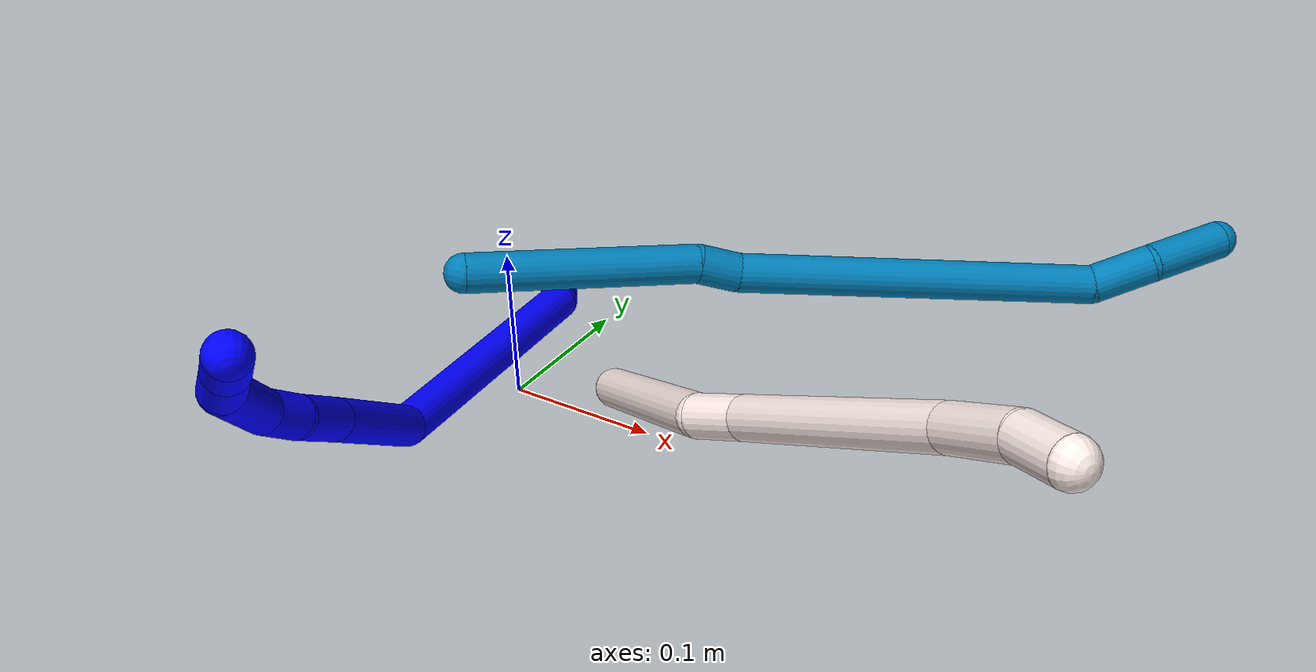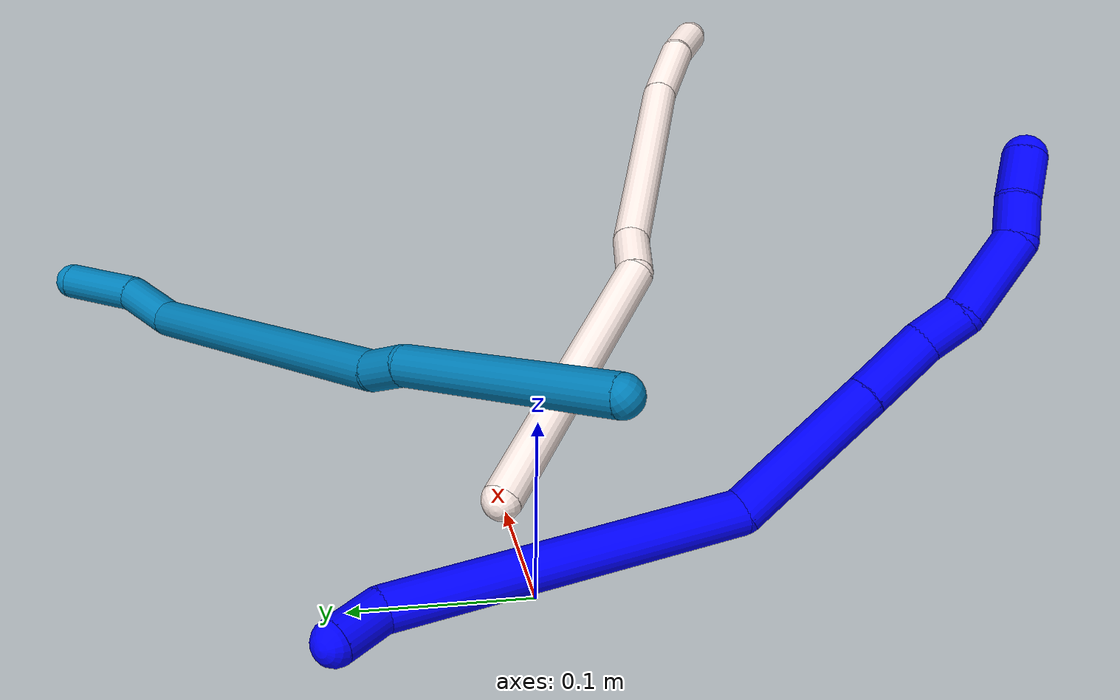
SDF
<sdf version="1.7">
 <world name="default">
  <model name="photoneo_s_sensor">
   <static>1</static>
   <pose>0 0 2 1.57079 1.57079 3.14159</pose>
   <link name="link">
    <inertial><mass>0.1</mass></inertial>
    <sensor name="sensor" type="depth">
     <update_rate>30</update_rate>
     <camera>
      <horizontal_fov>1.22</horizontal_fov>
      <image><width>1920</width><height>1200</height><format>B8G8R8</format></image>
      <clip><near>0.1</near><far>4</far></clip>
      <depth_camera><output>points</output></depth_camera>
     </camera>
     <plugin name="camera_plugin" filename="libgazebo_ros_depth_camera.so">
      <baseline>0.2</baseline>
      <alwaysOn>1</alwaysOn>
      <updateRate>0.0</updateRate>
      <cameraName>camera_ir</cameraName>
      <imageTopicName>/camera/color/image_raw</imageTopicName>
      <cameraInfoTopicName>/camera/color/camera_info</cameraInfoTopicName>
      <depthImageTopicName>/camera/depth/image_raw</depthImageTopicName>
      <depthImageCameraInfoTopicName>/camera/depth/camera_info</depthImageCameraInfoTopicName>
      <pointCloudTopicName>/camera/depth/points</pointCloudTopicName>
      <frameName>fr_optical</frameName>
      <pointCloudCutoff>0.1</pointCloudCutoff>
      <pointCloudCutoffMax>2.0</pointCloudCutoffMax>
      <distortionK1>0</distortionK1>
      <distortionK2>0</distortionK2>
      <distortionK3>0</distortionK3>
      <distortionT1>0</distortionT1>
      <distortionT2>0</distortionT2>
      <CxPrime>0</CxPrime>
      <Cx>0</Cx>
      <Cy>0</Cy>
      <focalLength>0</focalLength>
      <hackBaseline>0</hackBaseline>
     </plugin>
    </sensor>
   </link>
  </model>
  <model name="bin">
   <static>1</static>
   <link name="bottom">
    <collision name="collision-bottom">
     <pose>0 0 -0.01 0 -0 0</pose>
     <geometry><box><size>0.8 0.6 0.02</size></box></geometry>
     <surface>
      <friction><ode><mu>100</mu><mu2>100</mu2></ode></friction>
      <contact><collide_bitmask>65535</collide_bitmask></contact>
     </surface>
    </collision>
   </link>
   <link name="west_wall">
    <collision name="collision-west_wall">
     <pose>-0.41 0 0.1 0 -0 0</pose>
     <geometry><box><size>0.02 0.6 0.2</size></box></geometry>
     <surface>
      <friction><ode><mu>100</mu><mu2>100</mu2></ode></friction>
      <contact><collide_bitmask>65535</collide_bitmask></contact>
     </surface>
    </collision>
   </link>
   <link name="east_wall">
    <collision name="collision-east_wall">
     <pose>0.41 0 0.1 0 -0 0</pose>
     <geometry><box><size>0.02 0.6 0.2</size></box></geometry>
     <surface>
      <friction><ode><mu>100</mu><mu2>100</mu2></ode></friction>
      <contact><collide_bitmask>65535</collide_bitmask></contact>
     </surface>
    </collision>
   </link>
   <link name="south_wall">
    <collision name="collision-south_wall">
     <pose>0 -0.31 0.1 0 -0 0</pose>
     <geometry><box><size>0.8 0.02 0.2</size></box></geometry>
     <surface>
      <friction><ode><mu>100</mu><mu2>100</mu2></ode></friction>
      <contact><collide_bitmask>65535</collide_bitmask></contact>
     </surface>
    </collision>
   </link>
   <link name="north_wall">
    <collision name="collision-north_wall">
     <pose>0 0.31 0.1 0 -0 0</pose>
     <geometry><box><size>0.8 0.02 0.2</size></box></geometry>
     <surface>
      <friction><ode><mu>100</mu><mu2>100</mu2></ode></friction>
      <contact><collide_bitmask>65535</collide_bitmask></contact>
     </surface>
    </collision>
   </link>
  </model>
  <model name="1">
   <static>0</static>
   <link name="1">
    <collision name="collision-cylinder-e_1_1_4">
     <pose>-0.00103 -0.005915 0.013646 0.409021 -0.069138 -0.014345</pose>
     <geometry><cylinder><radius>0.0125</radius><length>0.029816</length></cylinder></geometry>
     <surface>
      <friction><ode><mu>1.16</mu><mu2>1.16</mu2><slip1>0</slip1><slip2>0</slip2></ode></friction>
      <contact><ode><kp>1e+06</kp><kd>1</kd><max_vel>0</max_vel><min_depth>0.001</min_depth></ode></contact>
     </surface>
    </collision>
    <visual name="visual-cylinder-e_1_1_4">
     <pose>-0.00103 -0.005915 0.013646 0.409021 -0.069138 -0.014345</pose>
     <geometry><cylinder><radius>0.0125</radius><length>0.029816</length></cylinder></geometry>
     <material><ambient>0 0 1 1</ambient></material>
    </visual>
    <collision name="collision-cylinder-e_2_4_5">
     <pose>0.022407 -0.079477 0.096136 0.776625 0.248259 0.101995</pose>
     <geometry><cylinder><radius>0.0125</radius><length>0.199143</length></cylinder></geometry>
     <surface>
      <friction><ode><mu>1.16</mu><mu2>1.16</mu2><slip1>0</slip1><slip2>0</slip2></ode></friction>
      <contact><ode><kp>1e+06</kp><kd>1</kd><max_vel>0</max_vel><min_depth>0.001</min_depth></ode></contact>
     </surface>
    </collision>
    <visual name="visual-cylinder-e_2_4_5">
     <pose>0.022407 -0.079477 0.096136 0.776625 0.248259 0.101995</pose>
     <geometry><cylinder><radius>0.0125</radius><length>0.199143</length></cylinder></geometry>
     <material><ambient>0 0 1 1</ambient></material>
    </visual>
    <collision name="collision-cylinder-e_3_5_6">
     <pose>0.036541 -0.185455 0.190308 0.986899 -0.221207 -0.119317</pose>
     <geometry><cylinder><radius>0.0125</radius><length>0.094177</length></cylinder></geometry>
     <surface>
      <friction><ode><mu>1.16</mu><mu2>1.16</mu2><slip1>0</slip1><slip2>0</slip2></ode></friction>
      <contact><ode><kp>1e+06</kp><kd>1</kd><max_vel>0</max_vel><min_depth>0.001</min_depth></ode></contact>
     </surface>
    </collision>
    <visual name="visual-cylinder-e_3_5_6">
     <pose>0.036541 -0.185455 0.190308 0.986899 -0.221207 -0.119317</pose>
     <geometry><cylinder><radius>0.0125</radius><length>0.094177</length></cylinder></geometry>
     <material><ambient>0 0 1 1</ambient></material>
    </visual>
    <collision name="collision-cylinder-e_4_6_7">
     <pose>0.021186 -0.24153 0.228034 0.960908 -0.228023 -0.119219</pose>
     <geometry><cylinder><radius>0.0125</radius><length>0.044447</length></cylinder></geometry>
     <surface>
      <friction><ode><mu>1.16</mu><mu2>1.16</mu2><slip1>0</slip1><slip2>0</slip2></ode></friction>
      <contact><ode><kp>1e+06</kp><kd>1</kd><max_vel>0</max_vel><min_depth>0.001</min_depth></ode></contact>
     </surface>
    </collision>
    <visual name="visual-cylinder-e_4_6_7">
     <pose>0.021186 -0.24153 0.228034 0.960908 -0.228023 -0.119219</pose>
     <geometry><cylinder><radius>0.0125</radius><length>0.044447</length></cylinder></geometry>
     <material><ambient>0 0 1 1</ambient></material>
    </visual>
    <collision name="collision-cylinder-e_5_7_8">
     <pose>0.014735 -0.27144 0.24501 1.21093 -0.109398 -0.075763</pose>
     <geometry><cylinder><radius>0.0125</radius><length>0.026151</length></cylinder></geometry>
     <surface>
      <friction><ode><mu>1.16</mu><mu2>1.16</mu2><slip1>0</slip1><slip2>0</slip2></ode></friction>
      <contact><ode><kp>1e+06</kp><kd>1</kd><max_vel>0</max_vel><min_depth>0.001</min_depth></ode></contact>
     </surface>
    </collision>
    <visual name="visual-cylinder-e_5_7_8">
     <pose>0.014735 -0.27144 0.24501 1.21093 -0.109398 -0.075763</pose>
     <geometry><cylinder><radius>0.0125</radius><length>0.026151</length></cylinder></geometry>
     <material><ambient>0 0 1 1</ambient></material>
    </visual>
    <collision name="collision-cylinder-e_6_8_9">
     <pose>0.002943 -0.303717 0.262427 1.0026 -0.409768 -0.226769</pose>
     <geometry><cylinder><radius>0.0125</radius><length>0.052029</length></cylinder></geometry>
     <surface>
      <friction><ode><mu>1.16</mu><mu2>1.16</mu2><slip1>0</slip1><slip2>0</slip2></ode></friction>
      <contact><ode><kp>1e+06</kp><kd>1</kd><max_vel>0</max_vel><min_depth>0.001</min_depth></ode></contact>
     </surface>
    </collision>
    <visual name="visual-cylinder-e_6_8_9">
     <pose>0.002943 -0.303717 0.262427 1.0026 -0.409768 -0.226769</pose>
     <geometry><cylinder><radius>0.0125</radius><length>0.052029</length></cylinder></geometry>
     <material><ambient>0 0 1 1</ambient></material>
    </visual>
    <collision name="collision-cylinder-e_7_9_10">
     <pose>-0.016745 -0.329215 0.281194 0.737707 -0.861136 -0.351425</pose>
     <geometry><cylinder><radius>0.0125</radius><length>0.024582</length></cylinder></geometry>
     <surface>
      <friction><ode><mu>1.16</mu><mu2>1.16</mu2><slip1>0</slip1><slip2>0</slip2></ode></friction>
      <contact><ode><kp>1e+06</kp><kd>1</kd><max_vel>0</max_vel><min_depth>0.001</min_depth></ode></contact>
     </surface>
    </collision>
    <visual name="visual-cylinder-e_7_9_10">
     <pose>-0.016745 -0.329215 0.281194 0.737707 -0.861136 -0.351425</pose>
     <geometry><cylinder><radius>0.0125</radius><length>0.024582</length></cylinder></geometry>
     <material><ambient>0 0 1 1</ambient></material>
    </visual>
    <collision name="collision-cylinder-e_8_10_2">
     <pose>-0.035857 -0.341398 0.295944 0.656313 -0.720999 -0.255298</pose>
     <geometry><cylinder><radius>0.0125</radius><length>0.029654</length></cylinder></geometry>
     <surface>
      <friction><ode><mu>1.16</mu><mu2>1.16</mu2><slip1>0</slip1><slip2>0</slip2></ode></friction>
      <contact><ode><kp>1e+06</kp><kd>1</kd><max_vel>0</max_vel><min_depth>0.001</min_depth></ode></contact>
     </surface>
    </collision>
    <visual name="visual-cylinder-e_8_10_2">
     <pose>-0.035857 -0.341398 0.295944 0.656313 -0.720999 -0.255298</pose>
     <geometry><cylinder><radius>0.0125</radius><length>0.029654</length></cylinder></geometry>
     <material><ambient>0 0 1 1</ambient></material>
    </visual>
    <collision name="collision-sphere-2">
     <pose>-0.045645 -0.348194 0.304767 0 -0 0</pose>
     <geometry><sphere><radius>0.0125</radius></sphere></geometry>
     <surface>
      <friction><ode><mu>1.16</mu><mu2>1.16</mu2><slip1>0</slip1><slip2>0</slip2></ode></friction>
      <contact><ode><kp>1e+06</kp><kd>1</kd><max_vel>0</max_vel><min_depth>0.001</min_depth></ode></contact>
     </surface>
    </collision>
    <visual name="visual-sphere-2">
     <pose>-0.045645 -0.348194 0.304767 0 -0 0</pose>
     <geometry><sphere><radius>0.0125</radius></sphere></geometry>
     <material><ambient>0 0 1 1</ambient></material>
    </visual>
    <collision name="collision-sphere-10">
     <pose>-0.026069 -0.334602 0.28712 0 -0 0</pose>
     <geometry><sphere><radius>0.0125</radius></sphere></geometry>
     <surface>
      <friction><ode><mu>1.16</mu><mu2>1.16</mu2><slip1>0</slip1><slip2>0</slip2></ode></friction>
      <contact><ode><kp>1e+06</kp><kd>1</kd><max_vel>0</max_vel><min_depth>0.001</min_depth></ode></contact>
     </surface>
    </collision>
    <visual name="visual-sphere-10">
     <pose>-0.026069 -0.334602 0.28712 0 -0 0</pose>
     <geometry><sphere><radius>0.0125</radius></sphere></geometry>
     <material><ambient>0 0 1 1</ambient></material>
    </visual>
    <collision name="collision-sphere-9">
     <pose>-0.007421 -0.323828 0.275267 0 -0 0</pose>
     <geometry><sphere><radius>0.0125</radius></sphere></geometry>
     <surface>
      <friction><ode><mu>1.16</mu><mu2>1.16</mu2><slip1>0</slip1><slip2>0</slip2></ode></friction>
      <contact><ode><kp>1e+06</kp><kd>1</kd><max_vel>0</max_vel><min_depth>0.001</min_depth></ode></contact>
     </surface>
    </collision>
    <visual name="visual-sphere-9">
     <pose>-0.007421 -0.323828 0.275267 0 -0 0</pose>
     <geometry><sphere><radius>0.0125</radius></sphere></geometry>
     <material><ambient>0 0 1 1</ambient></material>
    </visual>
    <collision name="collision-sphere-4">
     <pose>-0.00206 -0.01183 0.027291 0 -0 0</pose>
     <geometry><sphere><radius>0.0125</radius></sphere></geometry>
     <surface>
      <friction><ode><mu>1.16</mu><mu2>1.16</mu2><slip1>0</slip1><slip2>0</slip2></ode></friction>
      <contact><ode><kp>1e+06</kp><kd>1</kd><max_vel>0</max_vel><min_depth>0.001</min_depth></ode></contact>
     </surface>
    </collision>
    <visual name="visual-sphere-4">
     <pose>-0.00206 -0.01183 0.027291 0 -0 0</pose>
     <geometry><sphere><radius>0.0125</radius></sphere></geometry>
     <material><ambient>0 0 1 1</ambient></material>
    </visual>
    <collision name="collision-sphere-1">
     <geometry><sphere><radius>0.0125</radius></sphere></geometry>
     <surface>
      <friction><ode><mu>1.16</mu><mu2>1.16</mu2><slip1>0</slip1><slip2>0</slip2></ode></friction>
      <contact><ode><kp>1e+06</kp><kd>1</kd><max_vel>0</max_vel><min_depth>0.001</min_depth></ode></contact>
     </surface>
    </collision>
    <visual name="visual-sphere-1">
     <geometry><sphere><radius>0.0125</radius></sphere></geometry>
     <material><ambient>0 0 1 1</ambient></material>
    </visual>
    <collision name="collision-sphere-8">
     <pose>0.013307 -0.283605 0.249588 0 -0 0</pose>
     <geometry><sphere><radius>0.0125</radius></sphere></geometry>
     <surface>
      <friction><ode><mu>1.16</mu><mu2>1.16</mu2><slip1>0</slip1><slip2>0</slip2></ode></friction>
      <contact><ode><kp>1e+06</kp><kd>1</kd><max_vel>0</max_vel><min_depth>0.001</min_depth></ode></contact>
     </surface>
    </collision>
    <visual name="visual-sphere-8">
     <pose>0.013307 -0.283605 0.249588 0 -0 0</pose>
     <geometry><sphere><radius>0.0125</radius></sphere></geometry>
     <material><ambient>0 0 1 1</ambient></material>
    </visual>
    <collision name="collision-sphere-5">
     <pose>0.046873 -0.147125 0.164981 0 -0 0</pose>
     <geometry><sphere><radius>0.0125</radius></sphere></geometry>
     <surface>
      <friction><ode><mu>1.16</mu><mu2>1.16</mu2><slip1>0</slip1><slip2>0</slip2></ode></friction>
      <contact><ode><kp>1e+06</kp><kd>1</kd><max_vel>0</max_vel><min_depth>0.001</min_depth></ode></contact>
     </surface>
    </collision>
    <visual name="visual-sphere-5">
     <pose>0.046873 -0.147125 0.164981 0 -0 0</pose>
     <geometry><sphere><radius>0.0125</radius></sphere></geometry>
     <material><ambient>0 0 1 1</ambient></material>
    </visual>
    <collision name="collision-sphere-6">
     <pose>0.02621 -0.223785 0.215634 0 -0 0</pose>
     <geometry><sphere><radius>0.0125</radius></sphere></geometry>
     <surface>
      <friction><ode><mu>1.16</mu><mu2>1.16</mu2><slip1>0</slip1><slip2>0</slip2></ode></friction>
      <contact><ode><kp>1e+06</kp><kd>1</kd><max_vel>0</max_vel><min_depth>0.001</min_depth></ode></contact>
     </surface>
    </collision>
    <visual name="visual-sphere-6">
     <pose>0.02621 -0.223785 0.215634 0 -0 0</pose>
     <geometry><sphere><radius>0.0125</radius></sphere></geometry>
     <material><ambient>0 0 1 1</ambient></material>
    </visual>
    <collision name="collision-sphere-7">
     <pose>0.016162 -0.259275 0.240433 0 -0 0</pose>
     <geometry><sphere><radius>0.0125</radius></sphere></geometry>
     <surface>
      <friction><ode><mu>1.16</mu><mu2>1.16</mu2><slip1>0</slip1><slip2>0</slip2></ode></friction>
      <contact><ode><kp>1e+06</kp><kd>1</kd><max_vel>0</max_vel><min_depth>0.001</min_depth></ode></contact>
     </surface>
    </collision>
    <visual name="visual-sphere-7">
     <pose>0.016162 -0.259275 0.240433 0 -0 0</pose>
     <geometry><sphere><radius>0.0125</radius></sphere></geometry>
     <material><ambient>0 0 1 1</ambient></material>
    </visual>
    <inertial>
     <pose>0.015756 -0.170644 0.166719 0 -0 0</pose>
     <mass>0.5</mass>
     <inertia>
      <ixx>0.000792</ixx>
      <ixy>0</ixy>
      <ixz>0</ixz>
      <iyy>0.000573</iyy>
      <iyz>0</iyz>
      <izz>0.000424</izz>
     </inertia>
    </inertial>
   </link>
   <pose>-0.044529 0.106787 0.011292 -1.79822 0.906932 -2.3969</pose>
  </model>
  <model name="9">
   <static>0</static>
   <link name="9">
    <collision name="collision-cylinder-e_1_1_4">
     <pose>0.053324 0.043883 0.02341 -1.08073 0.820193 -0.510262</pose>
     <geometry><cylinder><radius>0.0125</radius><length>0.145839</length></cylinder></geometry>
     <surface>
      <friction><ode><mu>1.16</mu><mu2>1.16</mu2><slip1>0</slip1><slip2>0</slip2></ode></friction>
      <contact><ode><kp>1e+06</kp><kd>1</kd><max_vel>0</max_vel><min_depth>0.001</min_depth></ode></contact>
     </surface>
    </collision>
    <visual name="visual-cylinder-e_1_1_4">
     <pose>0.053324 0.043883 0.02341 -1.08073 0.820193 -0.510262</pose>
     <geometry><cylinder><radius>0.0125</radius><length>0.145839</length></cylinder></geometry>
     <material><ambient>0 0.490196 0.709804 1</ambient></material>
    </visual>
    <collision name="collision-cylinder-e_2_4_5">
     <pose>0.116492 0.097134 0.047857 -1.46064 0.807075 -0.730394</pose>
     <geometry><cylinder><radius>0.0125</radius><length>0.027257</length></cylinder></geometry>
     <surface>
      <friction><ode><mu>1.16</mu><mu2>1.16</mu2><slip1>0</slip1><slip2>0</slip2></ode></friction>
      <contact><ode><kp>1e+06</kp><kd>1</kd><max_vel>0</max_vel><min_depth>0.001</min_depth></ode></contact>
     </surface>
    </collision>
    <visual name="visual-cylinder-e_2_4_5">
     <pose>0.116492 0.097134 0.047857 -1.46064 0.807075 -0.730394</pose>
     <geometry><cylinder><radius>0.0125</radius><length>0.027257</length></cylinder></geometry>
     <material><ambient>0 0.490196 0.709804 1</ambient></material>
    </visual>
    <collision name="collision-cylinder-e_3_5_6">
     <pose>0.222755 0.163613 0.077094 -1.11212 0.987015 -0.645227</pose>
     <geometry><cylinder><radius>0.0125</radius><length>0.231114</length></cylinder></geometry>
     <surface>
      <friction><ode><mu>1.16</mu><mu2>1.16</mu2><slip1>0</slip1><slip2>0</slip2></ode></friction>
      <contact><ode><kp>1e+06</kp><kd>1</kd><max_vel>0</max_vel><min_depth>0.001</min_depth></ode></contact>
     </surface>
    </collision>
    <visual name="visual-cylinder-e_3_5_6">
     <pose>0.222755 0.163613 0.077094 -1.11212 0.987015 -0.645227</pose>
     <geometry><cylinder><radius>0.0125</radius><length>0.231114</length></cylinder></geometry>
     <material><ambient>0 0.490196 0.709804 1</ambient></material>
    </visual>
    <collision name="collision-cylinder-e_4_6_7">
     <pose>0.334655 0.227653 0.117186 -0.527725 0.844109 -0.241447</pose>
     <geometry><cylinder><radius>0.0125</radius><length>0.04143</length></cylinder></geometry>
     <surface>
      <friction><ode><mu>1.16</mu><mu2>1.16</mu2><slip1>0</slip1><slip2>0</slip2></ode></friction>
      <contact><ode><kp>1e+06</kp><kd>1</kd><max_vel>0</max_vel><min_depth>0.001</min_depth></ode></contact>
     </surface>
    </collision>
    <visual name="visual-cylinder-e_4_6_7">
     <pose>0.334655 0.227653 0.117186 -0.527725 0.844109 -0.241447</pose>
     <geometry><cylinder><radius>0.0125</radius><length>0.04143</length></cylinder></geometry>
     <material><ambient>0 0.490196 0.709804 1</ambient></material>
    </visual>
    <collision name="collision-cylinder-e_5_7_2">
     <pose>0.365613 0.25133 0.143868 -0.847312 0.605762 -0.280005</pose>
     <geometry><cylinder><radius>0.0125</radius><length>0.05436</length></cylinder></geometry>
     <surface>
      <friction><ode><mu>1.16</mu><mu2>1.16</mu2><slip1>0</slip1><slip2>0</slip2></ode></friction>
      <contact><ode><kp>1e+06</kp><kd>1</kd><max_vel>0</max_vel><min_depth>0.001</min_depth></ode></contact>
     </surface>
    </collision>
    <visual name="visual-cylinder-e_5_7_2">
     <pose>0.365613 0.25133 0.143868 -0.847312 0.605762 -0.280005</pose>
     <geometry><cylinder><radius>0.0125</radius><length>0.05436</length></cylinder></geometry>
     <material><ambient>0 0.490196 0.709804 1</ambient></material>
    </visual>
    <collision name="collision-sphere-2">
     <pose>0.381089 0.268077 0.15866 0 -0 0</pose>
     <geometry><sphere><radius>0.0125</radius></sphere></geometry>
     <surface>
      <friction><ode><mu>1.16</mu><mu2>1.16</mu2><slip1>0</slip1><slip2>0</slip2></ode></friction>
      <contact><ode><kp>1e+06</kp><kd>1</kd><max_vel>0</max_vel><min_depth>0.001</min_depth></ode></contact>
     </surface>
    </collision>
    <visual name="visual-sphere-2">
     <pose>0.381089 0.268077 0.15866 0 -0 0</pose>
     <geometry><sphere><radius>0.0125</radius></sphere></geometry>
     <material><ambient>0 0.490196 0.709804 1</ambient></material>
    </visual>
    <collision name="collision-sphere-7">
     <pose>0.350137 0.234583 0.129076 0 -0 0</pose>
     <geometry><sphere><radius>0.0125</radius></sphere></geometry>
     <surface>
      <friction><ode><mu>1.16</mu><mu2>1.16</mu2><slip1>0</slip1><slip2>0</slip2></ode></friction>
      <contact><ode><kp>1e+06</kp><kd>1</kd><max_vel>0</max_vel><min_depth>0.001</min_depth></ode></contact>
     </surface>
    </collision>
    <visual name="visual-sphere-7">
     <pose>0.350137 0.234583 0.129076 0 -0 0</pose>
     <geometry><sphere><radius>0.0125</radius></sphere></geometry>
     <material><ambient>0 0.490196 0.709804 1</ambient></material>
    </visual>
    <collision name="collision-sphere-6">
     <pose>0.319173 0.220722 0.105295 0 -0 0</pose>
     <geometry><sphere><radius>0.0125</radius></sphere></geometry>
     <surface>
      <friction><ode><mu>1.16</mu><mu2>1.16</mu2><slip1>0</slip1><slip2>0</slip2></ode></friction>
      <contact><ode><kp>1e+06</kp><kd>1</kd><max_vel>0</max_vel><min_depth>0.001</min_depth></ode></contact>
     </surface>
    </collision>
    <visual name="visual-sphere-6">
     <pose>0.319173 0.220722 0.105295 0 -0 0</pose>
     <geometry><sphere><radius>0.0125</radius></sphere></geometry>
     <material><ambient>0 0.490196 0.709804 1</ambient></material>
    </visual>
    <collision name="collision-sphere-5">
     <pose>0.126336 0.106503 0.048893 0 -0 0</pose>
     <geometry><sphere><radius>0.0125</radius></sphere></geometry>
     <surface>
      <friction><ode><mu>1.16</mu><mu2>1.16</mu2><slip1>0</slip1><slip2>0</slip2></ode></friction>
      <contact><ode><kp>1e+06</kp><kd>1</kd><max_vel>0</max_vel><min_depth>0.001</min_depth></ode></contact>
     </surface>
    </collision>
    <visual name="visual-sphere-5">
     <pose>0.126336 0.106503 0.048893 0 -0 0</pose>
     <geometry><sphere><radius>0.0125</radius></sphere></geometry>
     <material><ambient>0 0.490196 0.709804 1</ambient></material>
    </visual>
    <collision name="collision-sphere-1">
     <geometry><sphere><radius>0.0125</radius></sphere></geometry>
     <surface>
      <friction><ode><mu>1.16</mu><mu2>1.16</mu2><slip1>0</slip1><slip2>0</slip2></ode></friction>
      <contact><ode><kp>1e+06</kp><kd>1</kd><max_vel>0</max_vel><min_depth>0.001</min_depth></ode></contact>
     </surface>
    </collision>
    <visual name="visual-sphere-1">
     <geometry><sphere><radius>0.0125</radius></sphere></geometry>
     <material><ambient>0 0.490196 0.709804 1</ambient></material>
    </visual>
    <collision name="collision-sphere-4">
     <pose>0.106649 0.087766 0.046821 0 -0 0</pose>
     <geometry><sphere><radius>0.0125</radius></sphere></geometry>
     <surface>
      <friction><ode><mu>1.16</mu><mu2>1.16</mu2><slip1>0</slip1><slip2>0</slip2></ode></friction>
      <contact><ode><kp>1e+06</kp><kd>1</kd><max_vel>0</max_vel><min_depth>0.001</min_depth></ode></contact>
     </surface>
    </collision>
    <visual name="visual-sphere-4">
     <pose>0.106649 0.087766 0.046821 0 -0 0</pose>
     <geometry><sphere><radius>0.0125</radius></sphere></geometry>
     <material><ambient>0 0.490196 0.709804 1</ambient></material>
    </visual>
    <inertial>
     <pose>0.192346 0.139909 0.070424 0 -0 0</pose>
     <mass>0.5</mass>
     <inertia>
      <ixx>0.000225</ixx>
      <ixy>0</ixy>
      <ixz>0</ixz>
      <iyy>0.000629</iyy>
      <iyz>0</iyz>
      <izz>-0.001749</izz>
     </inertia>
    </inertial>
   </link>
   <pose>0.00231 -0.04433 0.111063 -0.670604 -0.023623 0.051606</pose>
  </model>
  <model name="11">
   <static>0</static>
   <link name="11">
    <collision name="collision-cylinder-e_1_1_4">
     <pose>0.037414 0.00134 0.091363 -0.014668 0.388644 -0.002887</pose>
     <geometry><cylinder><radius>0.0125</radius><length>0.197472</length></cylinder></geometry>
     <surface>
      <friction><ode><mu>1.16</mu><mu2>1.16</mu2><slip1>0</slip1><slip2>0</slip2></ode></friction>
      <contact><ode><kp>1e+06</kp><kd>1</kd><max_vel>0</max_vel><min_depth>0.001</min_depth></ode></contact>
     </surface>
    </collision>
    <visual name="visual-cylinder-e_1_1_4">
     <pose>0.037414 0.00134 0.091363 -0.014668 0.388644 -0.002887</pose>
     <geometry><cylinder><radius>0.0125</radius><length>0.197472</length></cylinder></geometry>
     <material><ambient>1 0.933333 0.909804 1</ambient></material>
    </visual>
    <collision name="collision-cylinder-e_2_4_5">
     <pose>0.076146 -0.003606 0.199525 0.358093 0.073318 0.013275</pose>
     <geometry><cylinder><radius>0.0125</radius><length>0.035972</length></cylinder></geometry>
     <surface>
      <friction><ode><mu>1.16</mu><mu2>1.16</mu2><slip1>0</slip1><slip2>0</slip2></ode></friction>
      <contact><ode><kp>1e+06</kp><kd>1</kd><max_vel>0</max_vel><min_depth>0.001</min_depth></ode></contact>
     </surface>
    </collision>
    <visual name="visual-cylinder-e_2_4_5">
     <pose>0.076146 -0.003606 0.199525 0.358093 0.073318 0.013275</pose>
     <geometry><cylinder><radius>0.0125</radius><length>0.035972</length></cylinder></geometry>
     <material><ambient>1 0.933333 0.909804 1</ambient></material>
    </visual>
    <collision name="collision-cylinder-e_3_5_6">
     <pose>0.097874 -0.028459 0.297586 0.224617 0.240139 0.027213</pose>
     <geometry><cylinder><radius>0.0125</radius><length>0.171636</length></cylinder></geometry>
     <surface>
      <friction><ode><mu>1.16</mu><mu2>1.16</mu2><slip1>0</slip1><slip2>0</slip2></ode></friction>
      <contact><ode><kp>1e+06</kp><kd>1</kd><max_vel>0</max_vel><min_depth>0.001</min_depth></ode></contact>
     </surface>
    </collision>
    <visual name="visual-cylinder-e_3_5_6">
     <pose>0.097874 -0.028459 0.297586 0.224617 0.240139 0.027213</pose>
     <geometry><cylinder><radius>0.0125</radius><length>0.171636</length></cylinder></geometry>
     <material><ambient>1 0.933333 0.909804 1</ambient></material>
    </visual>
    <collision name="collision-cylinder-e_4_6_7">
     <pose>0.12715 -0.050218 0.406363 0.115528 0.309725 0.018055</pose>
     <geometry><cylinder><radius>0.0125</radius><length>0.058169</length></cylinder></geometry>
     <surface>
      <friction><ode><mu>1.16</mu><mu2>1.16</mu2><slip1>0</slip1><slip2>0</slip2></ode></friction>
      <contact><ode><kp>1e+06</kp><kd>1</kd><max_vel>0</max_vel><min_depth>0.001</min_depth></ode></contact>
     </surface>
    </collision>
    <visual name="visual-cylinder-e_4_6_7">
     <pose>0.12715 -0.050218 0.406363 0.115528 0.309725 0.018055</pose>
     <geometry><cylinder><radius>0.0125</radius><length>0.058169</length></cylinder></geometry>
     <material><ambient>1 0.933333 0.909804 1</ambient></material>
    </visual>
    <collision name="collision-cylinder-e_5_7_2">
     <pose>0.138794 -0.052682 0.452029 -0.040157 0.151799 -0.003054</pose>
     <geometry><cylinder><radius>0.0125</radius><length>0.036752</length></cylinder></geometry>
     <surface>
      <friction><ode><mu>1.16</mu><mu2>1.16</mu2><slip1>0</slip1><slip2>0</slip2></ode></friction>
      <contact><ode><kp>1e+06</kp><kd>1</kd><max_vel>0</max_vel><min_depth>0.001</min_depth></ode></contact>
     </surface>
    </collision>
    <visual name="visual-cylinder-e_5_7_2">
     <pose>0.138794 -0.052682 0.452029 -0.040157 0.151799 -0.003054</pose>
     <geometry><cylinder><radius>0.0125</radius><length>0.036752</length></cylinder></geometry>
     <material><ambient>1 0.933333 0.909804 1</ambient></material>
    </visual>
    <collision name="collision-sphere-2">
     <pose>0.141572 -0.051953 0.470179 0 -0 0</pose>
     <geometry><sphere><radius>0.0125</radius></sphere></geometry>
     <surface>
      <friction><ode><mu>1.16</mu><mu2>1.16</mu2><slip1>0</slip1><slip2>0</slip2></ode></friction>
      <contact><ode><kp>1e+06</kp><kd>1</kd><max_vel>0</max_vel><min_depth>0.001</min_depth></ode></contact>
     </surface>
    </collision>
    <visual name="visual-sphere-2">
     <pose>0.141572 -0.051953 0.470179 0 -0 0</pose>
     <geometry><sphere><radius>0.0125</radius></sphere></geometry>
     <material><ambient>1 0.933333 0.909804 1</ambient></material>
    </visual>
    <collision name="collision-sphere-7">
     <pose>0.136015 -0.053411 0.433879 0 -0 0</pose>
     <geometry><sphere><radius>0.0125</radius></sphere></geometry>
     <surface>
      <friction><ode><mu>1.16</mu><mu2>1.16</mu2><slip1>0</slip1><slip2>0</slip2></ode></friction>
      <contact><ode><kp>1e+06</kp><kd>1</kd><max_vel>0</max_vel><min_depth>0.001</min_depth></ode></contact>
     </surface>
    </collision>
    <visual name="visual-sphere-7">
     <pose>0.136015 -0.053411 0.433879 0 -0 0</pose>
     <geometry><sphere><radius>0.0125</radius></sphere></geometry>
     <material><ambient>1 0.933333 0.909804 1</ambient></material>
    </visual>
    <collision name="collision-sphere-6">
     <pose>0.118285 -0.047025 0.378847 0 -0 0</pose>
     <geometry><sphere><radius>0.0125</radius></sphere></geometry>
     <surface>
      <friction><ode><mu>1.16</mu><mu2>1.16</mu2><slip1>0</slip1><slip2>0</slip2></ode></friction>
      <contact><ode><kp>1e+06</kp><kd>1</kd><max_vel>0</max_vel><min_depth>0.001</min_depth></ode></contact>
     </surface>
    </collision>
    <visual name="visual-sphere-6">
     <pose>0.118285 -0.047025 0.378847 0 -0 0</pose>
     <geometry><sphere><radius>0.0125</radius></sphere></geometry>
     <material><ambient>1 0.933333 0.909804 1</ambient></material>
    </visual>
    <collision name="collision-sphere-5">
     <pose>0.077464 -0.009893 0.216325 0 -0 0</pose>
     <geometry><sphere><radius>0.0125</radius></sphere></geometry>
     <surface>
      <friction><ode><mu>1.16</mu><mu2>1.16</mu2><slip1>0</slip1><slip2>0</slip2></ode></friction>
      <contact><ode><kp>1e+06</kp><kd>1</kd><max_vel>0</max_vel><min_depth>0.001</min_depth></ode></contact>
     </surface>
    </collision>
    <visual name="visual-sphere-5">
     <pose>0.077464 -0.009893 0.216325 0 -0 0</pose>
     <geometry><sphere><radius>0.0125</radius></sphere></geometry>
     <material><ambient>1 0.933333 0.909804 1</ambient></material>
    </visual>
    <collision name="collision-sphere-1">
     <geometry><sphere><radius>0.0125</radius></sphere></geometry>
     <surface>
      <friction><ode><mu>1.16</mu><mu2>1.16</mu2><slip1>0</slip1><slip2>0</slip2></ode></friction>
      <contact><ode><kp>1e+06</kp><kd>1</kd><max_vel>0</max_vel><min_depth>0.001</min_depth></ode></contact>
     </surface>
    </collision>
    <visual name="visual-sphere-1">
     <geometry><sphere><radius>0.0125</radius></sphere></geometry>
     <material><ambient>1 0.933333 0.909804 1</ambient></material>
    </visual>
    <collision name="collision-sphere-4">
     <pose>0.074829 0.00268 0.182725 0 -0 0</pose>
     <geometry><sphere><radius>0.0125</radius></sphere></geometry>
     <surface>
      <friction><ode><mu>1.16</mu><mu2>1.16</mu2><slip1>0</slip1><slip2>0</slip2></ode></friction>
      <contact><ode><kp>1e+06</kp><kd>1</kd><max_vel>0</max_vel><min_depth>0.001</min_depth></ode></contact>
     </surface>
    </collision>
    <visual name="visual-sphere-4">
     <pose>0.074829 0.00268 0.182725 0 -0 0</pose>
     <geometry><sphere><radius>0.0125</radius></sphere></geometry>
     <material><ambient>1 0.933333 0.909804 1</ambient></material>
    </visual>
    <inertial>
     <pose>0.078847 -0.019214 0.233092 0 -0 0</pose>
     <mass>0.5</mass>
     <inertia>
      <ixx>0.001066</ixx>
      <ixy>0</ixy>
      <ixz>0</ixz>
      <iyy>0.001102</iyy>
      <iyz>0</iyz>
      <izz>-0.000231</izz>
     </inertia>
    </inertial>
   </link>
   <pose>0.073167 0.006295 0.021985 -1.26096 -1.04702 -2.3072</pose>
  </model>
 </world>
</sdf>
